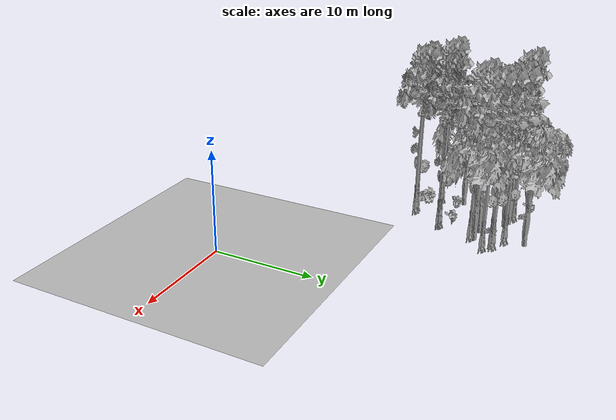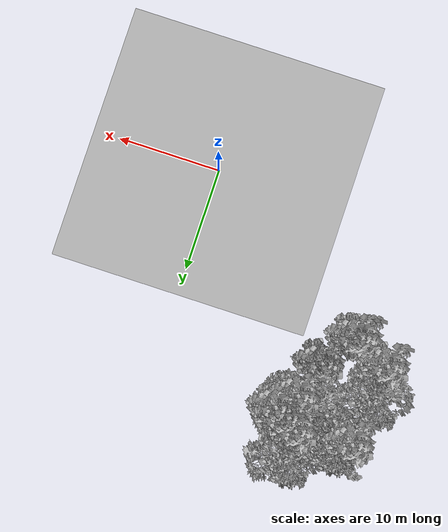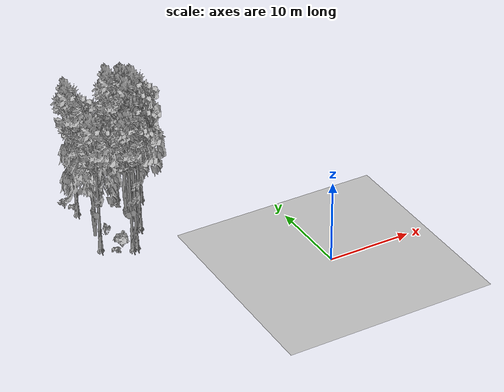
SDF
<sdf version="1.7">
 <world name="default">
  <model name="ground_plane">
   <static>1</static>
   <link name="link">
    <collision name="collision">
     <pose>-50 0 0 0 -0 0</pose>
     <geometry><plane><normal>0 0 1</normal><size>80 80</size></plane></geometry>
     <surface><contact><ode><min_depth>0.01</min_depth><max_vel>0</max_vel></ode></contact></surface>
    </collision>
    <visual name="grass">
     <cast_shadows>0</cast_shadows>
     <geometry>
      <mesh>
       <scale>0.46714285714285714 0.46714285714285714 0.1</scale>
       <uri>file://grass_plane/meshes/grass_plane.dae</uri>
      </mesh>
     </geometry>
    </visual>
   </link>
  </model>
  <model name="Tree 39">
   <static>1</static>
   <pose>-13.550032410327429 20.429703003380055 0 1.57079 -0 0</pose>
   <link name="link">
    <collision name="collision">
     <geometry><mesh><scale>3.5 5 3.5</scale><uri>model://tree_2/meshes/tree_2.obj</uri></mesh></geometry>
    </collision>
    <visual name="visual">
     <geometry><mesh><scale>3.5 5 3.5</scale><uri>model://tree_2/meshes/tree_2.obj</uri></mesh></geometry>
    </visual>
   </link>
  </model>
  <model name="Tree 57">
   <static>1</static>
   <pose>-14.539852591999601 24.939844391800747 0 1.57079 -0 0</pose>
   <link name="link">
    <collision name="collision">
     <geometry><mesh><scale>3.5 5 3.5</scale><uri>model://tree_2/meshes/tree_2.obj</uri></mesh></geometry>
    </collision>
    <visual name="visual">
     <geometry><mesh><scale>3.5 5 3.5</scale><uri>model://tree_2/meshes/tree_2.obj</uri></mesh></geometry>
    </visual>
   </link>
  </model>
  <model name="Tree 148">
   <static>1</static>
   <pose>-21.146897073997454 14.692408194227525 0 1.57079 -0 0</pose>
   <link name="link">
    <collision name="collision">
     <geometry><mesh><scale>3.5 5 3.5</scale><uri>model://tree_9/meshes/tree_9.obj</uri></mesh></geometry>
    </collision>
    <visual name="visual">
     <geometry><mesh><scale>3.5 5 3.5</scale><uri>model://tree_9/meshes/tree_9.obj</uri></mesh></geometry>
    </visual>
   </link>
  </model>
  <model name="Tree 157">
   <static>1</static>
   <pose>-15.02672686850368 22.94320215788901 0 1.57079 -0 0</pose>
   <link name="link">
    <collision name="collision">
     <geometry><mesh><scale>3.5 5 3.5</scale><uri>model://tree_9/meshes/tree_9.obj</uri></mesh></geometry>
    </collision>
    <visual name="visual">
     <geometry><mesh><scale>3.5 5 3.5</scale><uri>model://tree_9/meshes/tree_9.obj</uri></mesh></geometry>
    </visual>
   </link>
  </model>
  <model name="Tree 162">
   <static>1</static>
   <pose>-15.427436064837714 16.332440102942414 0 1.57079 -0 0</pose>
   <link name="link">
    <collision name="collision">
     <geometry><mesh><scale>3.5 5 3.5</scale><uri>model://tree_9/meshes/tree_9.obj</uri></mesh></geometry>
    </collision>
    <visual name="visual">
     <geometry><mesh><scale>3.5 5 3.5</scale><uri>model://tree_9/meshes/tree_9.obj</uri></mesh></geometry>
    </visual>
   </link>
  </model>
  <model name="Tree 185">
   <static>1</static>
   <pose>-15.397238412615959 16.25487978916881 0 1.57079 -0 0</pose>
   <link name="link">
    <collision name="collision">
     <geometry><mesh><scale>3.5 5 3.5</scale><uri>model://tree_9/meshes/tree_9.obj</uri></mesh></geometry>
    </collision>
    <visual name="visual">
     <geometry><mesh><scale>3.5 5 3.5</scale><uri>model://tree_9/meshes/tree_9.obj</uri></mesh></geometry>
    </visual>
   </link>
  </model>
  <model name="Tree 192">
   <static>1</static>
   <pose>-17.99303445053451 12.994300340426229 0 1.57079 -0 0</pose>
   <link name="link">
    <collision name="collision">
     <geometry><mesh><scale>3.5 5 3.5</scale><uri>model://tree_9/meshes/tree_9.obj</uri></mesh></geometry>
    </collision>
    <visual name="visual">
     <geometry><mesh><scale>3.5 5 3.5</scale><uri>model://tree_9/meshes/tree_9.obj</uri></mesh></geometry>
    </visual>
   </link>
  </model>
  <model name="Tree 215">
   <static>1</static>
   <pose>-17.449875157631926 13.064669707429395 0 1.57079 -0 0</pose>
   <link name="link">
    <collision name="collision">
     <geometry><mesh><scale>3.5 5 3.5</scale><uri>model://tree_9/meshes/tree_9.obj</uri></mesh></geometry>
    </collision>
    <visual name="visual">
     <geometry><mesh><scale>3.5 5 3.5</scale><uri>model://tree_9/meshes/tree_9.obj</uri></mesh></geometry>
    </visual>
   </link>
  </model>
  <model name="Tree 226">
   <static>1</static>
   <pose>-20.660892272037454 17.237519987727758 0 1.57079 -0 0</pose>
   <link name="link">
    <collision name="collision">
     <geometry><mesh><scale>3.5 5 3.5</scale><uri>model://tree_2/meshes/tree_2.obj</uri></mesh></geometry>
    </collision>
    <visual name="visual">
     <geometry><mesh><scale>3.5 5 3.5</scale><uri>model://tree_2/meshes/tree_2.obj</uri></mesh></geometry>
    </visual>
   </link>
  </model>
  <model name="Tree 284">
   <static>1</static>
   <pose>-18.37501444634444 22.51328508332322 0 1.57079 -0 0</pose>
   <link name="link">
    <collision name="collision">
     <geometry><mesh><scale>3.5 5 3.5</scale><uri>model://tree_2/meshes/tree_2.obj</uri></mesh></geometry>
    </collision>
    <visual name="visual">
     <geometry><mesh><scale>3.5 5 3.5</scale><uri>model://tree_2/meshes/tree_2.obj</uri></mesh></geometry>
    </visual>
   </link>
  </model>
  <model name="Tree 293">
   <static>1</static>
   <pose>-12.663362739232301 21.447048222956397 0 1.57079 -0 0</pose>
   <link name="link">
    <collision name="collision">
     <geometry><mesh><scale>3.5 5 3.5</scale><uri>model://tree_9/meshes/tree_9.obj</uri></mesh></geometry>
    </collision>
    <visual name="visual">
     <geometry><mesh><scale>3.5 5 3.5</scale><uri>model://tree_9/meshes/tree_9.obj</uri></mesh></geometry>
    </visual>
   </link>
  </model>
  <model name="Tree 298">
   <static>1</static>
   <pose>-20.32100823200254 22.52355252344961 0 1.57079 -0 0</pose>
   <link name="link">
    <collision name="collision">
     <geometry><mesh><scale>3.5 5 3.5</scale><uri>model://tree_9/meshes/tree_9.obj</uri></mesh></geometry>
    </collision>
    <visual name="visual">
     <geometry><mesh><scale>3.5 5 3.5</scale><uri>model://tree_9/meshes/tree_9.obj</uri></mesh></geometry>
    </visual>
   </link>
  </model>
  <model name="Tree 381">
   <static>1</static>
   <pose>-15.232035026876925 20.429723389508823 0 1.57079 -0 0</pose>
   <link name="link">
    <collision name="collision">
     <geometry><mesh><scale>3.5 5 3.5</scale><uri>model://tree_2/meshes/tree_2.obj</uri></mesh></geometry>
    </collision>
    <visual name="visual">
     <geometry><mesh><scale>3.5 5 3.5</scale><uri>model://tree_2/meshes/tree_2.obj</uri></mesh></geometry>
    </visual>
   </link>
  </model>
  <model name="Tree 433">
   <static>1</static>
   <pose>-13.913556835957266 22.006407481544066 0 1.57079 -0 0</pose>
   <link name="link">
    <collision name="collision">
     <geometry><mesh><scale>3.5 5 3.5</scale><uri>model://tree_9/meshes/tree_9.obj</uri></mesh></geometry>
    </collision>
    <visual name="visual">
     <geometry><mesh><scale>3.5 5 3.5</scale><uri>model://tree_9/meshes/tree_9.obj</uri></mesh></geometry>
    </visual>
   </link>
  </model>
  <model name="Tree 463">
   <static>1</static>
   <pose>-13.414449256621793 22.22233950664834 0 1.57079 -0 0</pose>
   <link name="link">
    <collision name="collision">
     <geometry><mesh><scale>3.5 5 3.5</scale><uri>model://tree_9/meshes/tree_9.obj</uri></mesh></geometry>
    </collision>
    <visual name="visual">
     <geometry><mesh><scale>3.5 5 3.5</scale><uri>model://tree_9/meshes/tree_9.obj</uri></mesh></geometry>
    </visual>
   </link>
  </model>
  <model name="Tree 585">
   <static>1</static>
   <pose>-14.266273529256466 19.81766532154181 0 1.57079 -0 0</pose>
   <link name="link">
    <collision name="collision">
     <geometry><mesh><scale>3.5 5 3.5</scale><uri>model://tree_9/meshes/tree_9.obj</uri></mesh></geometry>
    </collision>
    <visual name="visual">
     <geometry><mesh><scale>3.5 5 3.5</scale><uri>model://tree_9/meshes/tree_9.obj</uri></mesh></geometry>
    </visual>
   </link>
  </model>
  <model name="Tree 623">
   <static>1</static>
   <pose>-17.56440621054996 22.254280048620068 0 1.57079 -0 0</pose>
   <link name="link">
    <collision name="collision">
     <geometry><mesh><scale>3.5 5 3.5</scale><uri>model://tree_2/meshes/tree_2.obj</uri></mesh></geometry>
    </collision>
    <visual name="visual">
     <geometry><mesh><scale>3.5 5 3.5</scale><uri>model://tree_2/meshes/tree_2.obj</uri></mesh></geometry>
    </visual>
   </link>
  </model>
  <model name="Bush 12">
   <static>1</static>
   <pose>-15.910804001792602 21.480281624475495 0 1.57079 -0 0</pose>
   <link name="link">
    <collision name="collision">
     <geometry><mesh><scale>2 2 2</scale><uri>model://bush_2/meshes/bush_2.obj</uri></mesh></geometry>
     <surface><contact><collide_without_contact>false</collide_without_contact></contact></surface>
    </collision>
    <visual name="visual">
     <geometry><mesh><scale>2 2 2</scale><uri>model://bush_2/meshes/bush_2.obj</uri></mesh></geometry>
    </visual>
   </link>
  </model>
  <model name="Bush 120">
   <static>1</static>
   <pose>-19.467255418046626 16.779100785378574 0 1.57079 -0 0</pose>
   <link name="link">
    <collision name="collision">
     <geometry><mesh><scale>2 2 2</scale><uri>model://bush_4/meshes/bush_4.obj</uri></mesh></geometry>
     <surface><contact><collide_without_contact>false</collide_without_contact></contact></surface>
    </collision>
    <visual name="visual">
     <geometry><mesh><scale>2 2 2</scale><uri>model://bush_4/meshes/bush_4.obj</uri></mesh></geometry>
    </visual>
   </link>
  </model>
  <model name="Bush 215">
   <static>1</static>
   <pose>-19.881737959497695 13.32997235888429 0 1.57079 -0 0</pose>
   <link name="link">
    <collision name="collision">
     <geometry><mesh><scale>2 2 2</scale><uri>model://bush_2/meshes/bush_2.obj</uri></mesh></geometry>
     <surface><contact><collide_without_contact>false</collide_without_contact></contact></surface>
    </collision>
    <visual name="visual">
     <geometry><mesh><scale>2 2 2</scale><uri>model://bush_2/meshes/bush_2.obj</uri></mesh></geometry>
    </visual>
   </link>
  </model>
  <model name="Bush 232">
   <static>1</static>
   <pose>-15.546998962960949 17.565427716483057 0 1.57079 -0 0</pose>
   <link name="link">
    <collision name="collision">
     <geometry><mesh><scale>2 2 2</scale><uri>model://bush_0/meshes/bush_0.obj</uri></mesh></geometry>
     <surface><contact><collide_without_contact>false</collide_without_contact></contact></surface>
    </collision>
    <visual name="visual">
     <geometry><mesh><scale>2 2 2</scale><uri>model://bush_0/meshes/bush_0.obj</uri></mesh></geometry>
    </visual>
   </link>
  </model>
  <model name="Bush 252">
   <static>1</static>
   <pose>-21.250841401739585 23.906488345466144 0 1.57079 -0 0</pose>
   <link name="link">
    <collision name="collision">
     <geometry><mesh><scale>2 2 2</scale><uri>model://bush_0/meshes/bush_0.obj</uri></mesh></geometry>
     <surface><contact><collide_without_contact>false</collide_without_contact></contact></surface>
    </collision>
    <visual name="visual">
     <geometry><mesh><scale>2 2 2</scale><uri>model://bush_0/meshes/bush_0.obj</uri></mesh></geometry>
    </visual>
   </link>
  </model>
  <model name="Bush 551">
   <static>1</static>
   <pose>-18.958925804928214 13.671909001878745 0 1.57079 -0 0</pose>
   <link name="link">
    <collision name="collision">
     <geometry><mesh><scale>2 2 2</scale><uri>model://bush_1/meshes/bush_1.obj</uri></mesh></geometry>
     <surface><contact><collide_without_contact>false</collide_without_contact></contact></surface>
    </collision>
    <visual name="visual">
     <geometry><mesh><scale>2 2 2</scale><uri>model://bush_1/meshes/bush_1.obj</uri></mesh></geometry>
    </visual>
   </link>
  </model>
  <model name="Bush 574">
   <static>1</static>
   <pose>-20.402731707222657 23.533652843491417 0 1.57079 -0 0</pose>
   <link name="link">
    <collision name="collision">
     <geometry><mesh><scale>2 2 2</scale><uri>model://bush_2/meshes/bush_2.obj</uri></mesh></geometry>
     <surface><contact><collide_without_contact>false</collide_without_contact></contact></surface>
    </collision>
    <visual name="visual">
     <geometry><mesh><scale>2 2 2</scale><uri>model://bush_2/meshes/bush_2.obj</uri></mesh></geometry>
    </visual>
   </link>
  </model>
 </world>
</sdf>
